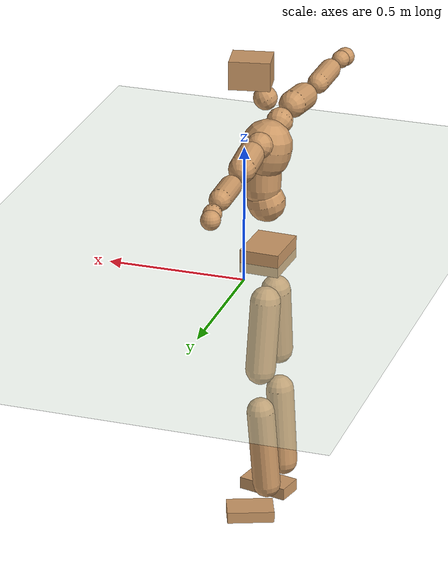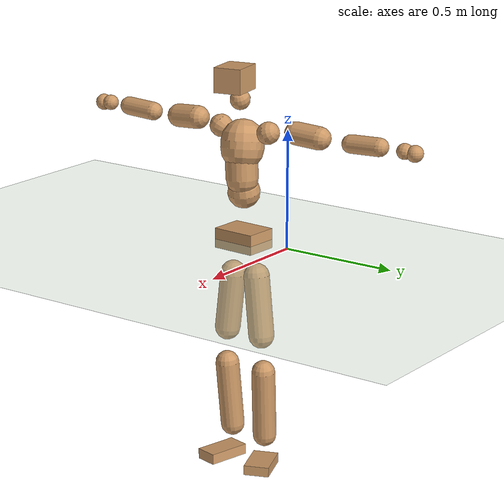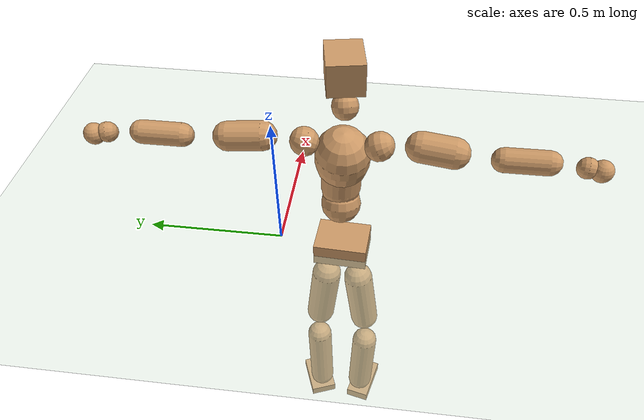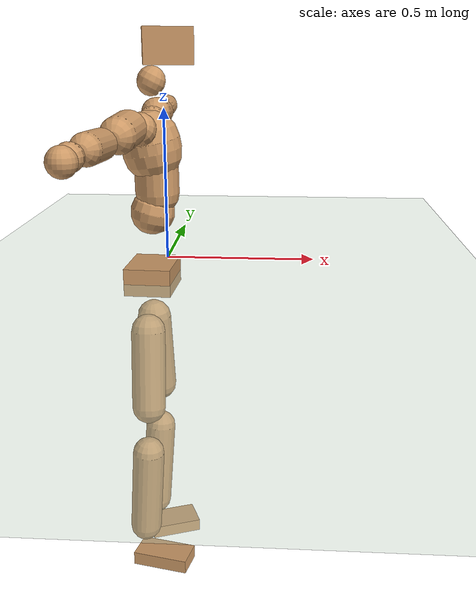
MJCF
<mujoco model="humanoid">
  <compiler coordinate="local" angle="radian"/>
  <default>
    <joint damping="0.0" armature="0.01" stiffness="0.0" limited="true"/>
    <geom conaffinity="1" condim="3" contype="7" margin="0.001" rgba="0.8 0.6 .4 1"/>
  </default>
  <asset>
    <texture type="skybox" builtin="gradient" rgb1=".4 .5 .6" rgb2="0 0 0" width="100" height="100"/>
    <texture builtin="flat" height="1278" mark="cross" markrgb="1 1 1" name="texgeom" random="0.01" rgb1="0.8 0.6 0.4" rgb2="0.8 0.6 0.4" type="cube" width="127"/>
    <texture builtin="checker" height="100" name="texplane" rgb1="0 0 0" rgb2="0.8 0.8 0.8" type="2d" width="100"/>
    <material name="MatPlane" reflectance="0.5" shininess="1" specular="1" texrepeat="60 60" texture="texplane"/>
    <material name="geom" texture="texgeom" texuniform="true"/>
  </asset>
  <worldbody>
    <light cutoff="100" diffuse="1 1 1" dir="-0 0 -1.3" directional="true" exponent="1" pos="0 0 1.3" specular=".1 .1 .1"/>
    <geom conaffinity="1" condim="3" name="floor" pos="0 0 0" rgba="0.8 0.9 0.8 1" size="100 100 .2" type="plane" material="MatPlane"/>
    <body name="Pelvis" pos="-0.0022 -0.2328 0.0114">
      <freejoint name="Pelvis"/>
      <geom type="box" contype="1" conaffinity="1" density="5359.3749" pos="-0.0114 0.0005 -0.0084" size="0.0722 0.0952 0.0423" quat="0.9997 0.0000 0.0000 -0.0228" name="Pelvis"/>
      <body name="L_Hip" pos="-0.0246 0.0502 -0.0826">
        <joint name="L_Hip_x" type="hinge" pos="0 0 0" axis="1 0 0" stiffness="1600" damping="160" armature="0.02" range="-180.0000 180.0000"/>
        <joint name="L_Hip_y" type="hinge" pos="0 0 0" axis="0 1 0" stiffness="1600" damping="160" armature="0.02" range="-180.0000 180.0000"/>
        <joint name="L_Hip_z" type="hinge" pos="0 0 0" axis="0 0 1" stiffness="1600" damping="160" armature="0.02" range="-180.0000 180.0000"/>
        <geom type="capsule" contype="1" conaffinity="1" density="2040.816327" size="0.0548" fromto="0.0024 0.0101 -0.0842 0.0097 0.0407 -0.3407" name="L_Hip"/>
        <body name="L_Knee" pos="0.0121 0.0508 -0.4248">
          <joint name="L_Knee_x" type="hinge" pos="0 0 0" axis="1 0 0" stiffness="1600" damping="160" armature="0.02" range="-180.0000 180.0000"/>
          <joint name="L_Knee_y" type="hinge" pos="0 0 0" axis="0 1 0" stiffness="1600" damping="160" armature="0.02" range="-180.0000 180.0000"/>
          <joint name="L_Knee_z" type="hinge" pos="0 0 0" axis="0 0 1" stiffness="1600" damping="160" armature="0.02" range="-180.0000 180.0000"/>
          <geom type="capsule" contype="1" conaffinity="1" density="1234.567901" size="0.0504" fromto="-0.0060 -0.0023 -0.0801 -0.0281 -0.0105 -0.3751" name="L_Knee"/>
          <body name="L_Ankle" pos="-0.0341 -0.0128 -0.4552">
            <joint name="L_Ankle_x" type="hinge" pos="0 0 0" axis="1 0 0" stiffness="1600" damping="160" armature="0.02" range="-180.0000 180.0000"/>
            <joint name="L_Ankle_y" type="hinge" pos="0 0 0" axis="0 1 0" stiffness="1600" damping="160" armature="0.02" range="-180.0000 180.0000"/>
            <joint name="L_Ankle_z" type="hinge" pos="0 0 0" axis="0 0 1" stiffness="1600" damping="160" armature="0.02" range="-180.0000 180.0000"/>
            <geom type="box" contype="1" conaffinity="1" density="999.999998" pos="0.0620 0.0244 -0.0318" size="0.0855 0.0542 0.021" quat="0.9825 0.0000 0.0000 0.1862" name="L_Ankle"/>
            <body name="L_Toe" pos="0.124 0.0488 -0.0637">
              <joint name="L_Toe_x" type="hinge" pos="0 0 0" axis="1 0 0" stiffness="1000" damping="100" armature="0.02" range="-180.0000 180.0000"/>
              <joint name="L_Toe_y" type="hinge" pos="0 0 0" axis="0 1 0" stiffness="1000" damping="100" armature="0.02" range="-180.0000 180.0000"/>
              <joint name="L_Toe_z" type="hinge" pos="0 0 0" axis="0 0 1" stiffness="1000" damping="100" armature="0.02" range="-180.0000 180.0000"/>
              <geom type="box" contype="1" conaffinity="1" density="7358561.304098" pos="0.0000 0.0000 0.0342" size="0.001 0.0026 0.0012" quat="0.9817 0.0000 0.0000 0.1903" name="L_Toe"/>
            </body>
          </body>
        </body>
      </body>
      <body name="R_Hip" pos="-0.0217 -0.0514 -0.0915">
        <joint name="R_Hip_x" type="hinge" pos="0 0 0" axis="1 0 0" stiffness="1600" damping="160" armature="0.02" range="-180.0000 180.0000"/>
        <joint name="R_Hip_y" type="hinge" pos="0 0 0" axis="0 1 0" stiffness="1600" damping="160" armature="0.02" range="-180.0000 180.0000"/>
        <joint name="R_Hip_z" type="hinge" pos="0 0 0" axis="0 0 1" stiffness="1600" damping="160" armature="0.02" range="-180.0000 180.0000"/>
        <geom type="capsule" contype="1" conaffinity="1" density="2040.816327" size="0.054" fromto="-0.0002 -0.0103 -0.0833 -0.0008 -0.0411 -0.3330" name="R_Hip"/>
        <body name="R_Knee" pos="-0.0011 -0.0514 -0.4163">
          <joint name="R_Knee_x" type="hinge" pos="0 0 0" axis="1 0 0" stiffness="1600" damping="160" armature="0.02" range="-180.0000 180.0000"/>
          <joint name="R_Knee_y" type="hinge" pos="0 0 0" axis="0 1 0" stiffness="1600" damping="160" armature="0.02" range="-180.0000 180.0000"/>
          <joint name="R_Knee_z" type="hinge" pos="0 0 0" axis="0 0 1" stiffness="1600" damping="160" armature="0.02" range="-180.0000 180.0000"/>
          <geom type="capsule" contype="1" conaffinity="1" density="1234.567901" size="0.0511" fromto="-0.0057 0.0035 -0.0808 -0.0258 0.0160 -0.3675" name="R_Knee"/>
          <body name="R_Ankle" pos="-0.0314 0.0196 -0.4483">
            <joint name="R_Ankle_x" type="hinge" pos="0 0 0" axis="1 0 0" stiffness="1600" damping="160" armature="0.02" range="-180.0000 180.0000"/>
            <joint name="R_Ankle_y" type="hinge" pos="0 0 0" axis="0 1 0" stiffness="1600" damping="160" armature="0.02" range="-180.0000 180.0000"/>
            <joint name="R_Ankle_z" type="hinge" pos="0 0 0" axis="0 0 1" stiffness="1600" damping="160" armature="0.02" range="-180.0000 180.0000"/>
            <geom type="box" contype="1" conaffinity="1" density="999.999955" pos="0.0670 -0.0150 -0.0333" size="0.0929 0.0478 0.0226" quat="0.9940 0.0000 0.0000 -0.1097" name="R_Ankle"/>
            <body name="R_Toe" pos="0.134 -0.0299 -0.0666">
              <joint name="R_Toe_x" type="hinge" pos="0 0 0" axis="1 0 0" stiffness="1000" damping="100" armature="0.02" range="-180.0000 180.0000"/>
              <joint name="R_Toe_y" type="hinge" pos="0 0 0" axis="0 1 0" stiffness="1000" damping="100" armature="0.02" range="-180.0000 180.0000"/>
              <joint name="R_Toe_z" type="hinge" pos="0 0 0" axis="0 0 1" stiffness="1000" damping="100" armature="0.02" range="-180.0000 180.0000"/>
              <geom type="box" contype="1" conaffinity="1" density="8647516.727797" pos="0.0000 0.0000 0.0353" size="0.0009 0.0023 0.0012" quat="0.9949 0.0000 0.0000 -0.1011" name="R_Toe"/>
            </body>
          </body>
        </body>
      </body>
      <body name="Torso" pos="-0.0222 0.0044 0.1236">
        <joint name="Torso_x" type="hinge" pos="0 0 0" axis="1 0 0" stiffness="2000" damping="200" armature="0.02" range="-180.0000 180.0000"/>
        <joint name="Torso_y" type="hinge" pos="0 0 0" axis="0 1 0" stiffness="2000" damping="200" armature="0.02" range="-180.0000 180.0000"/>
        <joint name="Torso_z" type="hinge" pos="0 0 0" axis="0 0 1" stiffness="2000" damping="200" armature="0.02" range="-180.0000 180.0000"/>
        <geom type="capsule" contype="1" conaffinity="1" density="2040.816327" size="0.069" fromto="0.0158 0.0023 0.0691 0.0163 0.0024 0.0711" name="Torso"/>
        <body name="Spine" pos="0.0321 0.0048 0.1402">
          <joint name="Spine_x" type="hinge" pos="0 0 0" axis="1 0 0" stiffness="2000" damping="200" armature="0.02" range="-180.0000 180.0000"/>
          <joint name="Spine_y" type="hinge" pos="0 0 0" axis="0 1 0" stiffness="2000" damping="200" armature="0.02" range="-180.0000 180.0000"/>
          <joint name="Spine_z" type="hinge" pos="0 0 0" axis="0 0 1" stiffness="2000" damping="200" armature="0.02" range="-180.0000 180.0000"/>
          <geom type="capsule" contype="1" conaffinity="1" density="2040.816327" size="0.068" fromto="-0.0004 -0.0028 0.0679 0.0001 0.0004 -0.0109" name="Spine"/>
          <body name="Chest" pos="-0.0003 -0.0024 0.0571">
            <joint name="Chest_x" type="hinge" pos="0 0 0" axis="1 0 0" stiffness="2000" damping="200" armature="0.02" range="-180.0000 180.0000"/>
            <joint name="Chest_y" type="hinge" pos="0 0 0" axis="0 1 0" stiffness="2000" damping="200" armature="0.02" range="-180.0000 180.0000"/>
            <joint name="Chest_z" type="hinge" pos="0 0 0" axis="0 0 1" stiffness="2000" damping="200" armature="0.02" range="-180.0000 180.0000"/>
            <geom type="capsule" contype="1" conaffinity="1" density="2040.816327" size="0.0906" fromto="-0.0154 -0.0053 0.0891 -0.0099 -0.0034 0.0575" name="Chest"/>
            <body name="Neck" pos="-0.0301 -0.0149 0.2136">
              <joint name="Neck_x" type="hinge" pos="0 0 0" axis="1 0 0" stiffness="1000" damping="100" armature="0.02" range="-180.0000 180.0000"/>
              <joint name="Neck_y" type="hinge" pos="0 0 0" axis="0 1 0" stiffness="1000" damping="100" armature="0.02" range="-180.0000 180.0000"/>
              <joint name="Neck_z" type="hinge" pos="0 0 0" axis="0 0 1" stiffness="1000" damping="100" armature="0.02" range="-180.0000 180.0000"/>
              <geom type="capsule" contype="1" conaffinity="1" density="1000" size="0.0426" fromto="0.0235 0.0037 0.0473 0.0244 0.0039 0.0491" name="Neck"/>
              <body name="Head" pos="0.0479 0.0076 0.0963">
                <joint name="Head_x" type="hinge" pos="0 0 0" axis="1 0 0" stiffness="1000" damping="100" armature="0.02" range="-180.0000 180.0000"/>
                <joint name="Head_y" type="hinge" pos="0 0 0" axis="0 1 0" stiffness="1000" damping="100" armature="0.02" range="-180.0000 180.0000"/>
                <joint name="Head_z" type="hinge" pos="0 0 0" axis="0 0 1" stiffness="1000" damping="100" armature="0.02" range="-180.0000 180.0000"/>
                <geom type="box" contype="1" conaffinity="1" density="2249.999733" pos="0.0249 0.0048 0.0492" size="0.0728 0.0588 0.0519" quat="0.9955 0.0000 0.0000 0.0952" name="Head"/>
              </body>
            </body>
            <body name="L_Thorax" pos="-0.0217 0.0617 0.1133">
              <joint name="L_Thorax_x" type="hinge" pos="0 0 0" axis="1 0 0" stiffness="1000" damping="100" armature="0.02" range="-180.0000 180.0000"/>
              <joint name="L_Thorax_y" type="hinge" pos="0 0 0" axis="0 1 0" stiffness="1000" damping="100" armature="0.02" range="-180.0000 180.0000"/>
              <joint name="L_Thorax_z" type="hinge" pos="0 0 0" axis="0 0 1" stiffness="1000" damping="100" armature="0.02" range="-180.0000 180.0000"/>
              <geom type="capsule" contype="1" conaffinity="1" density="1000" size="0.0471" fromto="-0.0049 0.0525 0.0209 -0.0050 0.0543 0.0216" name="L_Thorax"/>
              <body name="L_Shoulder" pos="-0.0099 0.1068 0.0426">
                <joint name="L_Shoulder_x" type="hinge" pos="0 0 0" axis="1 0 0" stiffness="1000" damping="100" armature="0.02" range="-720.0000 720.0000"/>
                <joint name="L_Shoulder_y" type="hinge" pos="0 0 0" axis="0 1 0" stiffness="1000" damping="100" armature="0.02" range="-720.0000 720.0000"/>
                <joint name="L_Shoulder_z" type="hinge" pos="0 0 0" axis="0 0 1" stiffness="1000" damping="100" armature="0.02" range="-720.0000 720.0000"/>
                <geom type="capsule" contype="1" conaffinity="1" density="1000" size="0.0479" fromto="-0.0046 0.0777 -0.0049 -0.0111 0.1881 -0.0118" name="L_Shoulder"/>
                <body name="L_Elbow" pos="-0.0156 0.2657 -0.0167">
                  <joint name="L_Elbow_x" type="hinge" pos="0 0 0" axis="1 0 0" stiffness="1000" damping="100" armature="0.02" range="-720.0000 720.0000"/>
                  <joint name="L_Elbow_y" type="hinge" pos="0 0 0" axis="0 1 0" stiffness="1000" damping="100" armature="0.02" range="-720.0000 720.0000"/>
                  <joint name="L_Elbow_z" type="hinge" pos="0 0 0" axis="0 0 1" stiffness="1000" damping="100" armature="0.02" range="-720.0000 720.0000"/>
                  <geom type="capsule" contype="1" conaffinity="1" density="1000" size="0.0381" fromto="-0.0030 0.0680 0.0021 -0.0087 0.1972 0.0061" name="L_Elbow"/>
                  <body name="L_Wrist" pos="-0.0117 0.2651 0.0082">
                    <joint name="L_Wrist_x" type="hinge" pos="0 0 0" axis="1 0 0" stiffness="600" damping="60" armature="0.02" range="-180.0000 180.0000"/>
                    <joint name="L_Wrist_y" type="hinge" pos="0 0 0" axis="0 1 0" stiffness="600" damping="60" armature="0.02" range="-180.0000 180.0000"/>
                    <joint name="L_Wrist_z" type="hinge" pos="0 0 0" axis="0 0 1" stiffness="600" damping="60" armature="0.02" range="-180.0000 180.0000"/>
                    <geom type="capsule" contype="1" conaffinity="1" density="1000" size="0.0326" fromto="-0.0075 0.0411 -0.0048 -0.0079 0.0430 -0.0050" name="L_Wrist"/>
                    <body name="L_Hand" pos="-0.0154 0.0841 -0.0098">
                      <joint name="L_Hand_x" type="hinge" pos="0 0 0" axis="1 0 0" stiffness="600" damping="60" armature="0.02" range="-180.0000 180.0000"/>
                      <joint name="L_Hand_y" type="hinge" pos="0 0 0" axis="0 1 0" stiffness="600" damping="60" armature="0.02" range="-180.0000 180.0000"/>
                      <joint name="L_Hand_z" type="hinge" pos="0 0 0" axis="0 0 1" stiffness="600" damping="60" armature="0.02" range="-180.0000 180.0000"/>
                      <geom type="sphere" contype="1" conaffinity="1" density="1000" size="0.0343" pos="0.0000 0.0000 0.0000" name="L_Hand"/>
                    </body>
                  </body>
                </body>
              </body>
            </body>
            <body name="R_Thorax" pos="-0.024 -0.0731 0.1131">
              <joint name="R_Thorax_x" type="hinge" pos="0 0 0" axis="1 0 0" stiffness="1000" damping="100" armature="0.02" range="-180.0000 180.0000"/>
              <joint name="R_Thorax_y" type="hinge" pos="0 0 0" axis="0 1 0" stiffness="1000" damping="100" armature="0.02" range="-180.0000 180.0000"/>
              <joint name="R_Thorax_z" type="hinge" pos="0 0 0" axis="0 0 1" stiffness="1000" damping="100" armature="0.02" range="-180.0000 180.0000"/>
              <geom type="capsule" contype="1" conaffinity="1" density="1000" size="0.0479" fromto="-0.0005 -0.0482 0.0215 -0.0005 -0.0500 0.0223" name="R_Thorax"/>
              <body name="R_Shoulder" pos="-0.001 -0.0982 0.0438">
                <joint name="R_Shoulder_x" type="hinge" pos="0 0 0" axis="1 0 0" stiffness="1000" damping="100" armature="0.02" range="-720.0000 720.0000"/>
                <joint name="R_Shoulder_y" type="hinge" pos="0 0 0" axis="0 1 0" stiffness="1000" damping="100" armature="0.02" range="-720.0000 720.0000"/>
                <joint name="R_Shoulder_z" type="hinge" pos="0 0 0" axis="0 0 1" stiffness="1000" damping="100" armature="0.02" range="-720.0000 720.0000"/>
                <geom type="capsule" contype="1" conaffinity="1" density="1000" size="0.0496" fromto="-0.0063 -0.0791 -0.0060 -0.0147 -0.1836 -0.0139" name="R_Shoulder"/>
                <body name="R_Elbow" pos="-0.021 -0.2627 -0.0198">
                  <joint name="R_Elbow_x" type="hinge" pos="0 0 0" axis="1 0 0" stiffness="1000" damping="100" armature="0.02" range="-720.0000 720.0000"/>
                  <joint name="R_Elbow_y" type="hinge" pos="0 0 0" axis="0 1 0" stiffness="1000" damping="100" armature="0.02" range="-720.0000 720.0000"/>
                  <joint name="R_Elbow_z" type="hinge" pos="0 0 0" axis="0 0 1" stiffness="1000" damping="100" armature="0.02" range="-720.0000 720.0000"/>
                  <geom type="capsule" contype="1" conaffinity="1" density="1000" size="0.0389" fromto="-0.0023 -0.0689 0.0024 -0.0068 -0.2046 0.0072" name="R_Elbow"/>
                  <body name="R_Wrist" pos="-0.009 -0.2734 0.0096">
                    <joint name="R_Wrist_x" type="hinge" pos="0 0 0" axis="1 0 0" stiffness="600" damping="60" armature="0.02" range="-180.0000 180.0000"/>
                    <joint name="R_Wrist_y" type="hinge" pos="0 0 0" axis="0 1 0" stiffness="600" damping="60" armature="0.02" range="-180.0000 180.0000"/>
                    <joint name="R_Wrist_z" type="hinge" pos="0 0 0" axis="0 0 1" stiffness="600" damping="60" armature="0.02" range="-180.0000 180.0000"/>
                    <geom type="capsule" contype="1" conaffinity="1" density="1000" size="0.033" fromto="-0.0048 -0.0418 -0.0038 -0.0050 -0.0438 -0.0039" name="R_Wrist"/>
                    <body name="R_Hand" pos="-0.0097 -0.0856 -0.0077">
                      <joint name="R_Hand_x" type="hinge" pos="0 0 0" axis="1 0 0" stiffness="600" damping="60" armature="0.02" range="-180.0000 180.0000"/>
                      <joint name="R_Hand_y" type="hinge" pos="0 0 0" axis="0 1 0" stiffness="600" damping="60" armature="0.02" range="-180.0000 180.0000"/>
                      <joint name="R_Hand_z" type="hinge" pos="0 0 0" axis="0 0 1" stiffness="600" damping="60" armature="0.02" range="-180.0000 180.0000"/>
                      <geom type="sphere" contype="1" conaffinity="1" density="1000" size="0.0347" pos="0.0000 0.0000 0.0000" name="R_Hand"/>
                    </body>
                  </body>
                </body>
              </body>
            </body>
          </body>
        </body>
      </body>
    </body>
  </worldbody>
  <actuator>
    <motor name="L_Hip_x" joint="L_Hip_x" gear="500"/>
    <motor name="L_Hip_y" joint="L_Hip_y" gear="500"/>
    <motor name="L_Hip_z" joint="L_Hip_z" gear="500"/>
    <motor name="L_Knee_x" joint="L_Knee_x" gear="500"/>
    <motor name="L_Knee_y" joint="L_Knee_y" gear="500"/>
    <motor name="L_Knee_z" joint="L_Knee_z" gear="500"/>
    <motor name="L_Ankle_x" joint="L_Ankle_x" gear="500"/>
    <motor name="L_Ankle_y" joint="L_Ankle_y" gear="500"/>
    <motor name="L_Ankle_z" joint="L_Ankle_z" gear="500"/>
    <motor name="L_Toe_x" joint="L_Toe_x" gear="500"/>
    <motor name="L_Toe_y" joint="L_Toe_y" gear="500"/>
    <motor name="L_Toe_z" joint="L_Toe_z" gear="500"/>
    <motor name="R_Hip_x" joint="R_Hip_x" gear="500"/>
    <motor name="R_Hip_y" joint="R_Hip_y" gear="500"/>
    <motor name="R_Hip_z" joint="R_Hip_z" gear="500"/>
    <motor name="R_Knee_x" joint="R_Knee_x" gear="500"/>
    <motor name="R_Knee_y" joint="R_Knee_y" gear="500"/>
    <motor name="R_Knee_z" joint="R_Knee_z" gear="500"/>
    <motor name="R_Ankle_x" joint="R_Ankle_x" gear="500"/>
    <motor name="R_Ankle_y" joint="R_Ankle_y" gear="500"/>
    <motor name="R_Ankle_z" joint="R_Ankle_z" gear="500"/>
    <motor name="R_Toe_x" joint="R_Toe_x" gear="500"/>
    <motor name="R_Toe_y" joint="R_Toe_y" gear="500"/>
    <motor name="R_Toe_z" joint="R_Toe_z" gear="500"/>
    <motor name="Torso_x" joint="Torso_x" gear="500"/>
    <motor name="Torso_y" joint="Torso_y" gear="500"/>
    <motor name="Torso_z" joint="Torso_z" gear="500"/>
    <motor name="Spine_x" joint="Spine_x" gear="500"/>
    <motor name="Spine_y" joint="Spine_y" gear="500"/>
    <motor name="Spine_z" joint="Spine_z" gear="500"/>
    <motor name="Chest_x" joint="Chest_x" gear="500"/>
    <motor name="Chest_y" joint="Chest_y" gear="500"/>
    <motor name="Chest_z" joint="Chest_z" gear="500"/>
    <motor name="Neck_x" joint="Neck_x" gear="500"/>
    <motor name="Neck_y" joint="Neck_y" gear="500"/>
    <motor name="Neck_z" joint="Neck_z" gear="500"/>
    <motor name="Head_x" joint="Head_x" gear="500"/>
    <motor name="Head_y" joint="Head_y" gear="500"/>
    <motor name="Head_z" joint="Head_z" gear="500"/>
    <motor name="L_Thorax_x" joint="L_Thorax_x" gear="500"/>
    <motor name="L_Thorax_y" joint="L_Thorax_y" gear="500"/>
    <motor name="L_Thorax_z" joint="L_Thorax_z" gear="500"/>
    <motor name="L_Shoulder_x" joint="L_Shoulder_x" gear="500"/>
    <motor name="L_Shoulder_y" joint="L_Shoulder_y" gear="500"/>
    <motor name="L_Shoulder_z" joint="L_Shoulder_z" gear="500"/>
    <motor name="L_Elbow_x" joint="L_Elbow_x" gear="500"/>
    <motor name="L_Elbow_y" joint="L_Elbow_y" gear="500"/>
    <motor name="L_Elbow_z" joint="L_Elbow_z" gear="500"/>
    <motor name="L_Wrist_x" joint="L_Wrist_x" gear="500"/>
    <motor name="L_Wrist_y" joint="L_Wrist_y" gear="500"/>
    <motor name="L_Wrist_z" joint="L_Wrist_z" gear="500"/>
    <motor name="L_Hand_x" joint="L_Hand_x" gear="500"/>
    <motor name="L_Hand_y" joint="L_Hand_y" gear="500"/>
    <motor name="L_Hand_z" joint="L_Hand_z" gear="500"/>
    <motor name="R_Thorax_x" joint="R_Thorax_x" gear="500"/>
    <motor name="R_Thorax_y" joint="R_Thorax_y" gear="500"/>
    <motor name="R_Thorax_z" joint="R_Thorax_z" gear="500"/>
    <motor name="R_Shoulder_x" joint="R_Shoulder_x" gear="500"/>
    <motor name="R_Shoulder_y" joint="R_Shoulder_y" gear="500"/>
    <motor name="R_Shoulder_z" joint="R_Shoulder_z" gear="500"/>
    <motor name="R_Elbow_x" joint="R_Elbow_x" gear="500"/>
    <motor name="R_Elbow_y" joint="R_Elbow_y" gear="500"/>
    <motor name="R_Elbow_z" joint="R_Elbow_z" gear="500"/>
    <motor name="R_Wrist_x" joint="R_Wrist_x" gear="500"/>
    <motor name="R_Wrist_y" joint="R_Wrist_y" gear="500"/>
    <motor name="R_Wrist_z" joint="R_Wrist_z" gear="500"/>
    <motor name="R_Hand_x" joint="R_Hand_x" gear="500"/>
    <motor name="R_Hand_y" joint="R_Hand_y" gear="500"/>
    <motor name="R_Hand_z" joint="R_Hand_z" gear="500"/>
  </actuator>
  <contact>
    <exclude body1="Torso" body2="Chest"/>
    <exclude body1="Head" body2="Chest"/>
    <exclude body1="R_Knee" body2="R_Toe"/>
    <exclude body1="R_Knee" body2="L_Ankle"/>
    <exclude body1="R_Knee" body2="L_Toe"/>
    <exclude body1="L_Knee" body2="L_Toe"/>
    <exclude body1="L_Knee" body2="R_Ankle"/>
    <exclude body1="L_Knee" body2="R_Toe"/>
    <exclude body1="L_Shoulder" body2="Chest"/>
    <exclude body1="R_Shoulder" body2="Chest"/>
  </contact>
  <sensor/>
  <size njmax="700" nconmax="700"/>
</mujoco>
